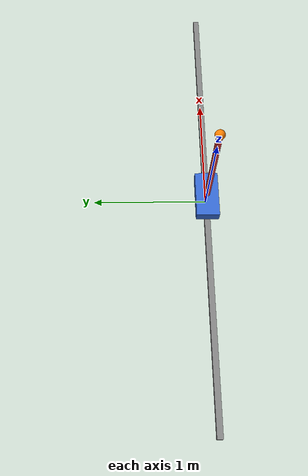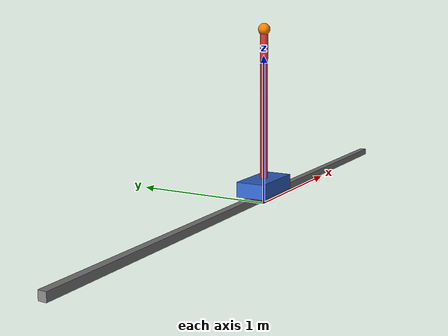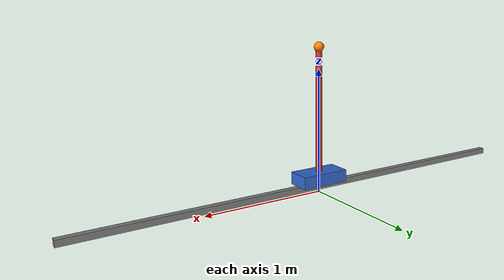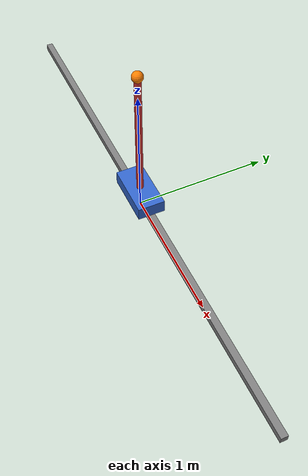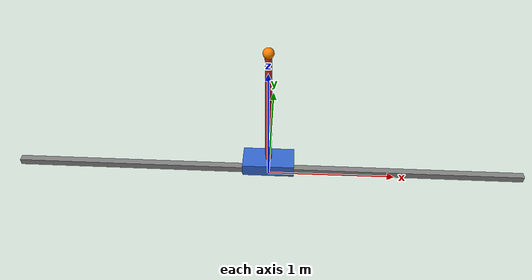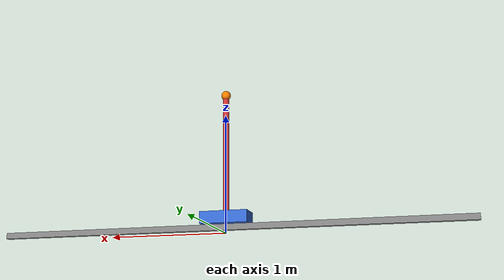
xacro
<?xml version="1.0"?>
<robot name="cartpole" xmlns:xacro="http://www.ros.org/wiki/xacro">

  <xacro:property name="cart_mass"   value="1.0"/>
  <xacro:property name="pole_mass"   value="0.1"/>
  <xacro:property name="cart_width"  value="0.4"/>
  <xacro:property name="cart_height" value="0.1"/>
  <xacro:property name="cart_depth"  value="0.2"/>
  <xacro:property name="pole_length" value="1.0"/>
  <xacro:property name="pole_radius" value="0.025"/>

  <link name="world"/>

  <joint name="rail_joint" type="fixed">
    <parent link="world"/>
    <child  link="rail"/>
    <origin xyz="0 0 0.05" rpy="0 0 0"/>
  </joint>

  <link name="rail">
    <visual>
      <geometry><box size="4.0 0.05 0.05"/></geometry>
      <material name="gray"><color rgba="0.5 0.5 0.5 1"/></material>
    </visual>
    <collision>
      <geometry><box size="4.0 0.05 0.05"/></geometry>
    </collision>
    <inertial>
      <mass value="10.0"/>
      <inertia ixx="0.1" ixy="0" ixz="0"
               iyy="0.1" iyz="0" izz="0.1"/>
    </inertial>
  </link>

  <joint name="slider_joint" type="prismatic">
    <parent link="rail"/>
    <child  link="cart"/>
    <origin xyz="0 0 0.075" rpy="0 0 0"/>
    <axis xyz="1 0 0"/>
    <limit lower="-1.9" upper="1.9" effort="100" velocity="10"/>
    <dynamics damping="0.1" friction="0.0"/>
  </joint>

  <link name="cart">
    <visual>
      <geometry>
        <box size="${cart_width} ${cart_depth} ${cart_height}"/>
      </geometry>
      <material name="blue"><color rgba="0.2 0.4 0.8 1"/></material>
    </visual>
    <collision>
      <geometry>
        <box size="${cart_width} ${cart_depth} ${cart_height}"/>
      </geometry>
    </collision>
    <inertial>
      <mass value="${cart_mass}"/>
      <inertia
        ixx="${cart_mass*(cart_depth*cart_depth+cart_height*cart_height)/12}"
        ixy="0" ixz="0"
        iyy="${cart_mass*(cart_width*cart_width+cart_height*cart_height)/12}"
        iyz="0"
        izz="${cart_mass*(cart_width*cart_width+cart_depth*cart_depth)/12}"/>
    </inertial>
  </link>

  <joint name="pole_joint" type="revolute">
    <parent link="cart"/>
    <child  link="pole"/>
    <origin xyz="0 0 ${cart_height/2}" rpy="0 0 0"/>
    <axis xyz="0 1 0"/>
    <limit lower="-3.14159" upper="3.14159" effort="0" velocity="100"/>
    <dynamics damping="0.001" friction="0.0"/>

  </joint>

  <link name="pole">
    <visual>
      <origin xyz="0 0 ${pole_length/2}" rpy="0 0 0"/>
      <geometry>
        <cylinder length="${pole_length}" radius="${pole_radius}"/>
      </geometry>
      <material name="red"><color rgba="0.8 0.2 0.2 1"/></material>
    </visual>
    <collision>
      <origin xyz="0 0 ${pole_length/2}" rpy="0 0 0"/>
      <geometry>
        <cylinder length="${pole_length}" radius="${pole_radius}"/>
      </geometry>
    </collision>
    <inertial>
      <origin xyz="0 0 ${pole_length/2}" rpy="0 0 0"/>
      <mass value="${pole_mass}"/>
      <inertia
        ixx="${pole_mass*(3*pole_radius*pole_radius+pole_length*pole_length)/12}"
        ixy="0" ixz="0"
        iyy="${pole_mass*(3*pole_radius*pole_radius+pole_length*pole_length)/12}"
        iyz="0"
        izz="${pole_mass*pole_radius*pole_radius/2}"/>
    </inertial>
  </link>

  <joint name="bob_joint" type="fixed">
    <parent link="pole"/>
    <child  link="bob"/>
    <origin xyz="0 0 ${pole_length}" rpy="0 0 0"/>
  </joint>

  <link name="bob">
    <visual>
      <geometry><sphere radius="0.04"/></geometry>
      <material name="orange"><color rgba="1.0 0.5 0.0 1"/></material>
    </visual>
    <collision>
      <geometry><sphere radius="0.04"/></geometry>
    </collision>
    <inertial>
      <mass value="0.001"/>
      <inertia ixx="0.000001" ixy="0" ixz="0"
               iyy="0.000001" iyz="0" izz="0.000001"/>
    </inertial>
  </link>

  <!-- Joint state publisher - correct topic type for Harmonic -->
  <gazebo>
    <plugin filename="gz-sim-joint-state-publisher-system"
            name="gz::sim::systems::JointStatePublisher">
      <topic>/world/cartpole_world/model/cartpole/joint_state</topic>
      <joint_name>slider_joint</joint_name>
      <joint_name>pole_joint</joint_name>
    </plugin>
  </gazebo>

  <!-- Apply force to slider joint -->
  <gazebo>
    <plugin filename="gz-sim-apply-joint-force-system"
            name="gz::sim::systems::ApplyJointForce">
      <joint_name>slider_joint</joint_name>
      <topic>/cart_force_gz</topic>
    </plugin>
  </gazebo>

</robot>
